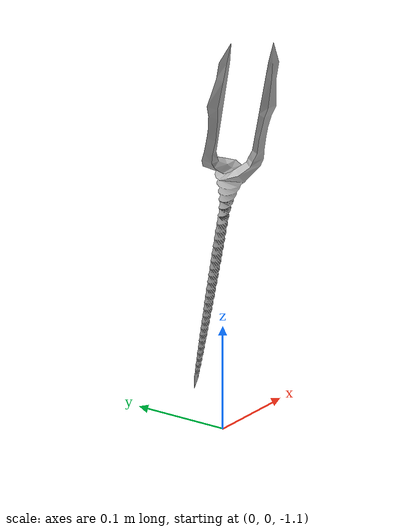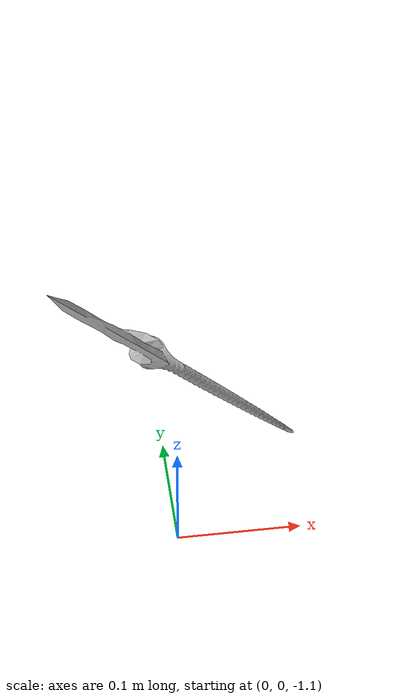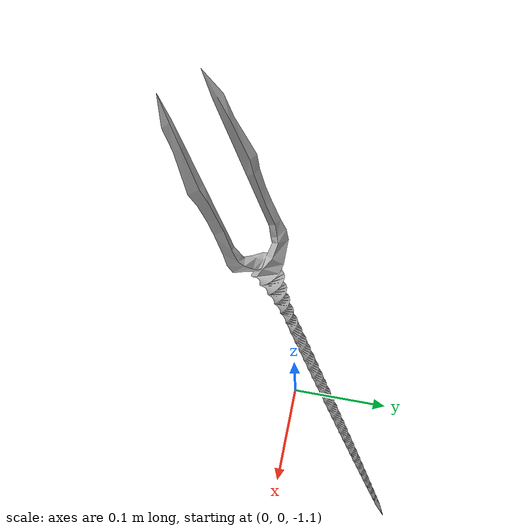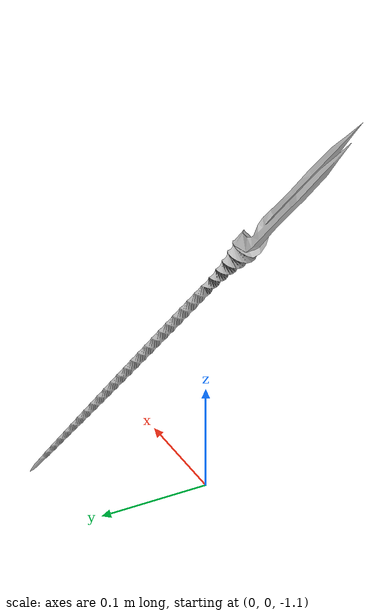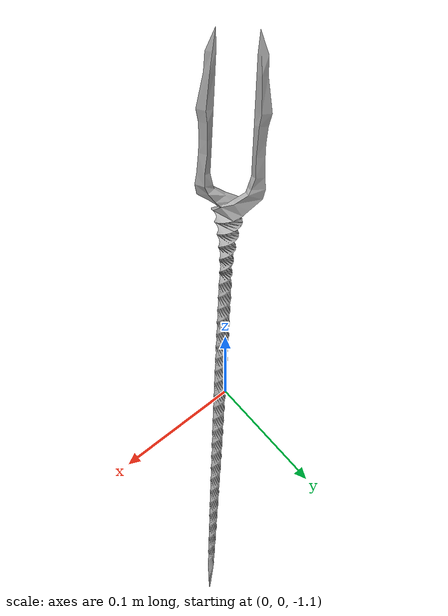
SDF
<?xml version="1.0"?>
<sdf version="1.4">
  <world name="default">
    <model name="longinus">
      <pose>0 0 -0.9  0 2.5 0.8</pose>
      <static>true</static>
      <link name="body">
        <visual name="visual">
          <geometry>
            <mesh><uri>file:///home/n130s/link/ROS/indigo_trusty/cws_spaceexploration/src/tork-a/hakuto/longinuslance_description/models/longinus_short.stl</uri>
            <scale>0.002 0.002 0.0024</scale>
            </mesh>
          </geometry>
        </visual>
      </link>
    </model>
  </world>
</sdf>
